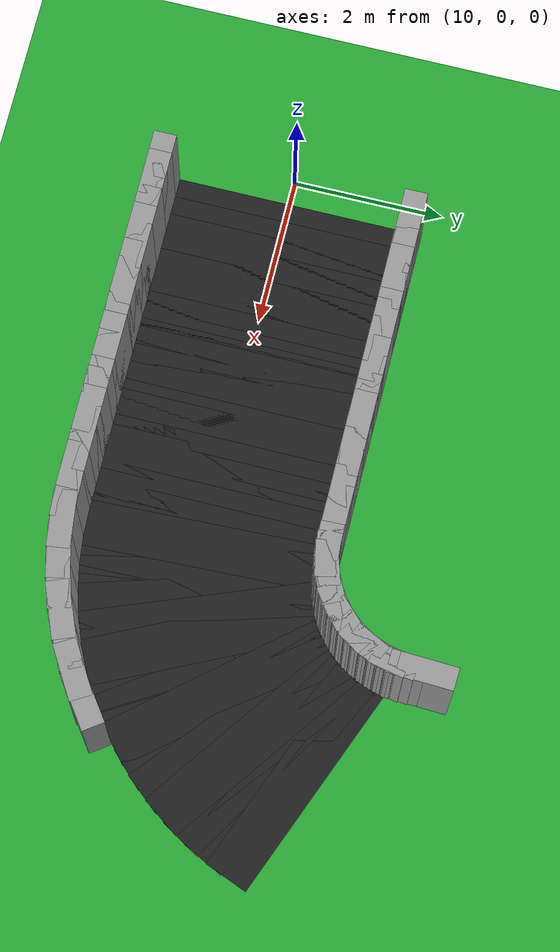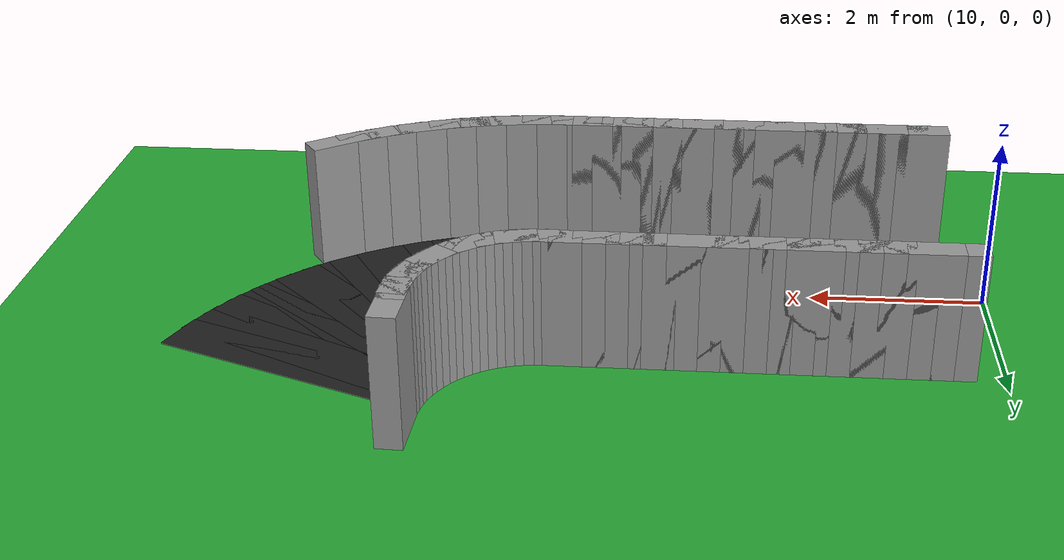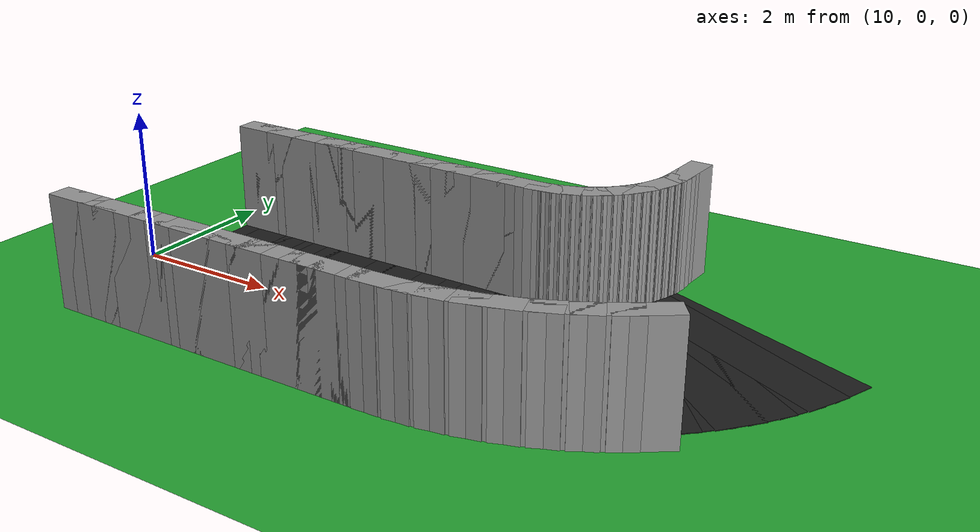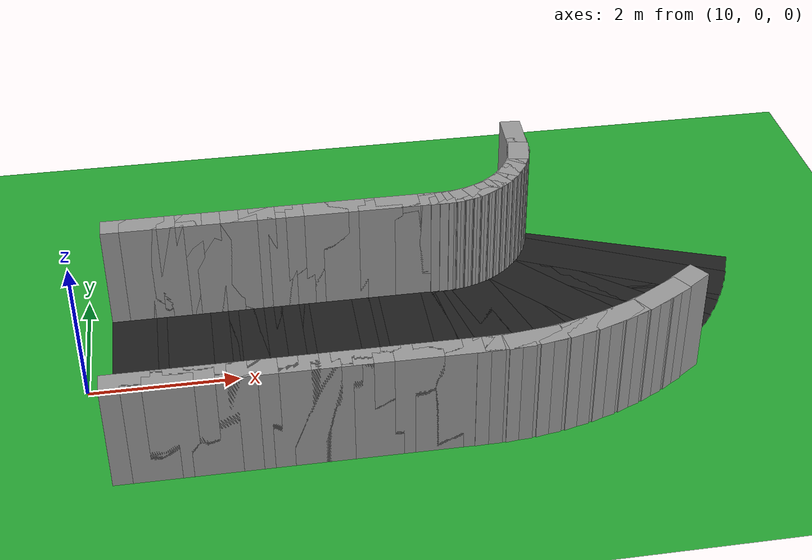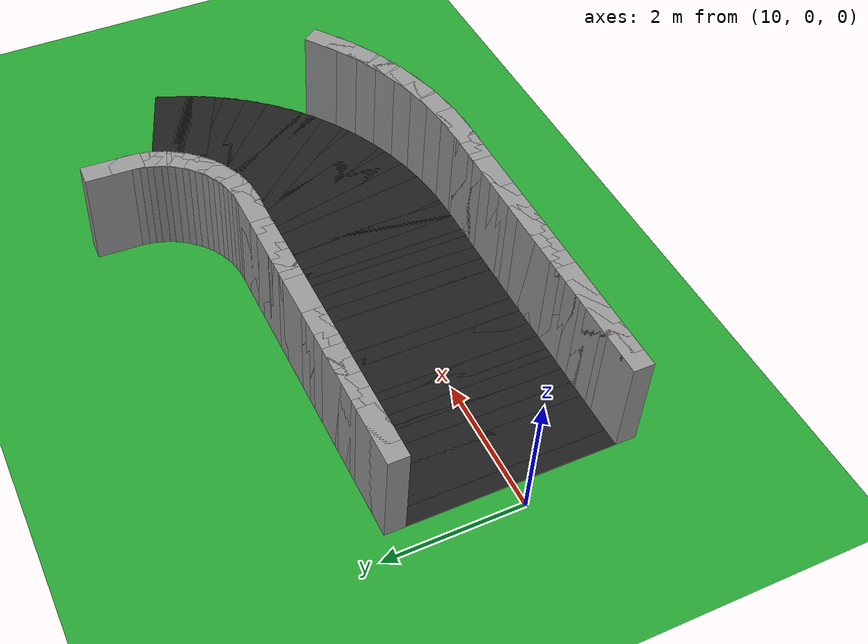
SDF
<sdf version="1.6">
 <world name="loop_extreme">
  <include><uri>model://sun</uri></include>
  <model name="ground_plane">
   <static>true</static>
   <link name="link">
    <collision name="collision">
     <surface><friction><ode><mu>100</mu><mu2>50</mu2></ode></friction></surface>
     <geometry><plane><normal>0 0 1</normal><size>120 120</size></plane></geometry>
    </collision>
    <visual name="visual">
     <geometry><plane><normal>0 0 1</normal><size>120 120</size></plane></geometry>
     <material>
      <script><uri>file://media/materials/scripts/gazebo.material</uri><name>Gazebo/Green</name></script>
     </material>
    </visual>
   </link>
  </model>
  <model name="asphalt_42">
   <static>true</static>
   <pose>10.625 0.000 0.005 0 0 0.00000</pose>
   <link name="link">
    <visual name="visual">
     <geometry><box><size>0.610 3.000 0.010</size></box></geometry>
     <material>
      <script><uri>file://media/materials/scripts/gazebo.material</uri><name>Gazebo/Black</name></script>
     </material>
    </visual>
   </link>
  </model>
  <model name="curbL_42">
   <static>true</static>
   <pose>10.625 1.650 0.750 0 0 0.00000</pose>
   <link name="link">
    <collision name="collision"><geometry><box><size>0.610 0.300 1.500</size></box></geometry></collision>
    <visual name="visual">
     <geometry><box><size>0.610 0.300 1.500</size></box></geometry>
     <material>
      <script><uri>file://media/materials/scripts/gazebo.material</uri><name>Gazebo/Grey</name></script>
     </material>
    </visual>
   </link>
  </model>
  <model name="curbR_42">
   <static>true</static>
   <pose>10.625 -1.650 0.750 0 0 0.00000</pose>
   <link name="link">
    <collision name="collision"><geometry><box><size>0.610 0.300 1.500</size></box></geometry></collision>
    <visual name="visual">
     <geometry><box><size>0.610 0.300 1.500</size></box></geometry>
     <material>
      <script><uri>file://media/materials/scripts/gazebo.material</uri><name>Gazebo/Grey</name></script>
     </material>
    </visual>
   </link>
  </model>
  <model name="asphalt_43">
   <static>true</static>
   <pose>10.875 0.000 0.005 0 0 0.00000</pose>
   <link name="link">
    <visual name="visual">
     <geometry><box><size>0.610 3.000 0.010</size></box></geometry>
     <material>
      <script><uri>file://media/materials/scripts/gazebo.material</uri><name>Gazebo/Black</name></script>
     </material>
    </visual>
   </link>
  </model>
  <model name="curbL_43">
   <static>true</static>
   <pose>10.875 1.650 0.750 0 0 0.00000</pose>
   <link name="link">
    <collision name="collision"><geometry><box><size>0.610 0.300 1.500</size></box></geometry></collision>
    <visual name="visual">
     <geometry><box><size>0.610 0.300 1.500</size></box></geometry>
     <material>
      <script><uri>file://media/materials/scripts/gazebo.material</uri><name>Gazebo/Grey</name></script>
     </material>
    </visual>
   </link>
  </model>
  <model name="curbR_43">
   <static>true</static>
   <pose>10.875 -1.650 0.750 0 0 0.00000</pose>
   <link name="link">
    <collision name="collision"><geometry><box><size>0.610 0.300 1.500</size></box></geometry></collision>
    <visual name="visual">
     <geometry><box><size>0.610 0.300 1.500</size></box></geometry>
     <material>
      <script><uri>file://media/materials/scripts/gazebo.material</uri><name>Gazebo/Grey</name></script>
     </material>
    </visual>
   </link>
  </model>
  <model name="asphalt_44">
   <static>true</static>
   <pose>11.125 0.000 0.005 0 0 0.00000</pose>
   <link name="link">
    <visual name="visual">
     <geometry><box><size>0.610 3.000 0.010</size></box></geometry>
     <material>
      <script><uri>file://media/materials/scripts/gazebo.material</uri><name>Gazebo/Black</name></script>
     </material>
    </visual>
   </link>
  </model>
  <model name="curbL_44">
   <static>true</static>
   <pose>11.125 1.650 0.750 0 0 0.00000</pose>
   <link name="link">
    <collision name="collision"><geometry><box><size>0.610 0.300 1.500</size></box></geometry></collision>
    <visual name="visual">
     <geometry><box><size>0.610 0.300 1.500</size></box></geometry>
     <material>
      <script><uri>file://media/materials/scripts/gazebo.material</uri><name>Gazebo/Grey</name></script>
     </material>
    </visual>
   </link>
  </model>
  <model name="curbR_44">
   <static>true</static>
   <pose>11.125 -1.650 0.750 0 0 0.00000</pose>
   <link name="link">
    <collision name="collision"><geometry><box><size>0.610 0.300 1.500</size></box></geometry></collision>
    <visual name="visual">
     <geometry><box><size>0.610 0.300 1.500</size></box></geometry>
     <material>
      <script><uri>file://media/materials/scripts/gazebo.material</uri><name>Gazebo/Grey</name></script>
     </material>
    </visual>
   </link>
  </model>
  <model name="asphalt_45">
   <static>true</static>
   <pose>11.375 0.000 0.005 0 0 0.00000</pose>
   <link name="link">
    <visual name="visual">
     <geometry><box><size>0.610 3.000 0.010</size></box></geometry>
     <material>
      <script><uri>file://media/materials/scripts/gazebo.material</uri><name>Gazebo/Black</name></script>
     </material>
    </visual>
   </link>
  </model>
  <model name="curbL_45">
   <static>true</static>
   <pose>11.375 1.650 0.750 0 0 0.00000</pose>
   <link name="link">
    <collision name="collision"><geometry><box><size>0.610 0.300 1.500</size></box></geometry></collision>
    <visual name="visual">
     <geometry><box><size>0.610 0.300 1.500</size></box></geometry>
     <material>
      <script><uri>file://media/materials/scripts/gazebo.material</uri><name>Gazebo/Grey</name></script>
     </material>
    </visual>
   </link>
  </model>
  <model name="curbR_45">
   <static>true</static>
   <pose>11.375 -1.650 0.750 0 0 0.00000</pose>
   <link name="link">
    <collision name="collision"><geometry><box><size>0.610 0.300 1.500</size></box></geometry></collision>
    <visual name="visual">
     <geometry><box><size>0.610 0.300 1.500</size></box></geometry>
     <material>
      <script><uri>file://media/materials/scripts/gazebo.material</uri><name>Gazebo/Grey</name></script>
     </material>
    </visual>
   </link>
  </model>
  <model name="asphalt_46">
   <static>true</static>
   <pose>11.625 0.000 0.005 0 0 0.00000</pose>
   <link name="link">
    <visual name="visual">
     <geometry><box><size>0.610 3.000 0.010</size></box></geometry>
     <material>
      <script><uri>file://media/materials/scripts/gazebo.material</uri><name>Gazebo/Black</name></script>
     </material>
    </visual>
   </link>
  </model>
  <model name="curbL_46">
   <static>true</static>
   <pose>11.625 1.650 0.750 0 0 0.00000</pose>
   <link name="link">
    <collision name="collision"><geometry><box><size>0.610 0.300 1.500</size></box></geometry></collision>
    <visual name="visual">
     <geometry><box><size>0.610 0.300 1.500</size></box></geometry>
     <material>
      <script><uri>file://media/materials/scripts/gazebo.material</uri><name>Gazebo/Grey</name></script>
     </material>
    </visual>
   </link>
  </model>
  <model name="curbR_46">
   <static>true</static>
   <pose>11.625 -1.650 0.750 0 0 0.00000</pose>
   <link name="link">
    <collision name="collision"><geometry><box><size>0.610 0.300 1.500</size></box></geometry></collision>
    <visual name="visual">
     <geometry><box><size>0.610 0.300 1.500</size></box></geometry>
     <material>
      <script><uri>file://media/materials/scripts/gazebo.material</uri><name>Gazebo/Grey</name></script>
     </material>
    </visual>
   </link>
  </model>
  <model name="asphalt_47">
   <static>true</static>
   <pose>11.875 0.000 0.005 0 0 0.00000</pose>
   <link name="link">
    <visual name="visual">
     <geometry><box><size>0.610 3.000 0.010</size></box></geometry>
     <material>
      <script><uri>file://media/materials/scripts/gazebo.material</uri><name>Gazebo/Black</name></script>
     </material>
    </visual>
   </link>
  </model>
  <model name="curbL_47">
   <static>true</static>
   <pose>11.875 1.650 0.750 0 0 0.00000</pose>
   <link name="link">
    <collision name="collision"><geometry><box><size>0.610 0.300 1.500</size></box></geometry></collision>
    <visual name="visual">
     <geometry><box><size>0.610 0.300 1.500</size></box></geometry>
     <material>
      <script><uri>file://media/materials/scripts/gazebo.material</uri><name>Gazebo/Grey</name></script>
     </material>
    </visual>
   </link>
  </model>
  <model name="curbR_47">
   <static>true</static>
   <pose>11.875 -1.650 0.750 0 0 0.00000</pose>
   <link name="link">
    <collision name="collision"><geometry><box><size>0.610 0.300 1.500</size></box></geometry></collision>
    <visual name="visual">
     <geometry><box><size>0.610 0.300 1.500</size></box></geometry>
     <material>
      <script><uri>file://media/materials/scripts/gazebo.material</uri><name>Gazebo/Grey</name></script>
     </material>
    </visual>
   </link>
  </model>
  <model name="asphalt_48">
   <static>true</static>
   <pose>12.125 0.000 0.005 0 0 0.00000</pose>
   <link name="link">
    <visual name="visual">
     <geometry><box><size>0.610 3.000 0.010</size></box></geometry>
     <material>
      <script><uri>file://media/materials/scripts/gazebo.material</uri><name>Gazebo/Black</name></script>
     </material>
    </visual>
   </link>
  </model>
  <model name="curbL_48">
   <static>true</static>
   <pose>12.125 1.650 0.750 0 0 0.00000</pose>
   <link name="link">
    <collision name="collision"><geometry><box><size>0.610 0.300 1.500</size></box></geometry></collision>
    <visual name="visual">
     <geometry><box><size>0.610 0.300 1.500</size></box></geometry>
     <material>
      <script><uri>file://media/materials/scripts/gazebo.material</uri><name>Gazebo/Grey</name></script>
     </material>
    </visual>
   </link>
  </model>
  <model name="curbR_48">
   <static>true</static>
   <pose>12.125 -1.650 0.750 0 0 0.00000</pose>
   <link name="link">
    <collision name="collision"><geometry><box><size>0.610 0.300 1.500</size></box></geometry></collision>
    <visual name="visual">
     <geometry><box><size>0.610 0.300 1.500</size></box></geometry>
     <material>
      <script><uri>file://media/materials/scripts/gazebo.material</uri><name>Gazebo/Grey</name></script>
     </material>
    </visual>
   </link>
  </model>
  <model name="asphalt_49">
   <static>true</static>
   <pose>12.375 0.000 0.005 0 0 0.00000</pose>
   <link name="link">
    <visual name="visual">
     <geometry><box><size>0.610 3.000 0.010</size></box></geometry>
     <material>
      <script><uri>file://media/materials/scripts/gazebo.material</uri><name>Gazebo/Black</name></script>
     </material>
    </visual>
   </link>
  </model>
  <model name="curbL_49">
   <static>true</static>
   <pose>12.375 1.650 0.750 0 0 0.00000</pose>
   <link name="link">
    <collision name="collision"><geometry><box><size>0.610 0.300 1.500</size></box></geometry></collision>
    <visual name="visual">
     <geometry><box><size>0.610 0.300 1.500</size></box></geometry>
     <material>
      <script><uri>file://media/materials/scripts/gazebo.material</uri><name>Gazebo/Grey</name></script>
     </material>
    </visual>
   </link>
  </model>
  <model name="curbR_49">
   <static>true</static>
   <pose>12.375 -1.650 0.750 0 0 0.00000</pose>
   <link name="link">
    <collision name="collision"><geometry><box><size>0.610 0.300 1.500</size></box></geometry></collision>
    <visual name="visual">
     <geometry><box><size>0.610 0.300 1.500</size></box></geometry>
     <material>
      <script><uri>file://media/materials/scripts/gazebo.material</uri><name>Gazebo/Grey</name></script>
     </material>
    </visual>
   </link>
  </model>
  <model name="asphalt_50">
   <static>true</static>
   <pose>12.625 0.000 0.005 0 0 0.00000</pose>
   <link name="link">
    <visual name="visual">
     <geometry><box><size>0.610 3.000 0.010</size></box></geometry>
     <material>
      <script><uri>file://media/materials/scripts/gazebo.material</uri><name>Gazebo/Black</name></script>
     </material>
    </visual>
   </link>
  </model>
  <model name="curbL_50">
   <static>true</static>
   <pose>12.625 1.650 0.750 0 0 0.00000</pose>
   <link name="link">
    <collision name="collision"><geometry><box><size>0.610 0.300 1.500</size></box></geometry></collision>
    <visual name="visual">
     <geometry><box><size>0.610 0.300 1.500</size></box></geometry>
     <material>
      <script><uri>file://media/materials/scripts/gazebo.material</uri><name>Gazebo/Grey</name></script>
     </material>
    </visual>
   </link>
  </model>
  <model name="curbR_50">
   <static>true</static>
   <pose>12.625 -1.650 0.750 0 0 0.00000</pose>
   <link name="link">
    <collision name="collision"><geometry><box><size>0.610 0.300 1.500</size></box></geometry></collision>
    <visual name="visual">
     <geometry><box><size>0.610 0.300 1.500</size></box></geometry>
     <material>
      <script><uri>file://media/materials/scripts/gazebo.material</uri><name>Gazebo/Grey</name></script>
     </material>
    </visual>
   </link>
  </model>
  <model name="asphalt_51">
   <static>true</static>
   <pose>12.875 0.000 0.005 0 0 0.00000</pose>
   <link name="link">
    <visual name="visual">
     <geometry><box><size>0.610 3.000 0.010</size></box></geometry>
     <material>
      <script><uri>file://media/materials/scripts/gazebo.material</uri><name>Gazebo/Black</name></script>
     </material>
    </visual>
   </link>
  </model>
  <model name="curbL_51">
   <static>true</static>
   <pose>12.875 1.650 0.750 0 0 0.00000</pose>
   <link name="link">
    <collision name="collision"><geometry><box><size>0.610 0.300 1.500</size></box></geometry></collision>
    <visual name="visual">
     <geometry><box><size>0.610 0.300 1.500</size></box></geometry>
     <material>
      <script><uri>file://media/materials/scripts/gazebo.material</uri><name>Gazebo/Grey</name></script>
     </material>
    </visual>
   </link>
  </model>
  <model name="curbR_51">
   <static>true</static>
   <pose>12.875 -1.650 0.750 0 0 0.00000</pose>
   <link name="link">
    <collision name="collision"><geometry><box><size>0.610 0.300 1.500</size></box></geometry></collision>
    <visual name="visual">
     <geometry><box><size>0.610 0.300 1.500</size></box></geometry>
     <material>
      <script><uri>file://media/materials/scripts/gazebo.material</uri><name>Gazebo/Grey</name></script>
     </material>
    </visual>
   </link>
  </model>
  <model name="asphalt_52">
   <static>true</static>
   <pose>13.125 0.000 0.005 0 0 0.00000</pose>
   <link name="link">
    <visual name="visual">
     <geometry><box><size>0.610 3.000 0.010</size></box></geometry>
     <material>
      <script><uri>file://media/materials/scripts/gazebo.material</uri><name>Gazebo/Black</name></script>
     </material>
    </visual>
   </link>
  </model>
  <model name="curbL_52">
   <static>true</static>
   <pose>13.125 1.650 0.750 0 0 0.00000</pose>
   <link name="link">
    <collision name="collision"><geometry><box><size>0.610 0.300 1.500</size></box></geometry></collision>
    <visual name="visual">
     <geometry><box><size>0.610 0.300 1.500</size></box></geometry>
     <material>
      <script><uri>file://media/materials/scripts/gazebo.material</uri><name>Gazebo/Grey</name></script>
     </material>
    </visual>
   </link>
  </model>
  <model name="curbR_52">
   <static>true</static>
   <pose>13.125 -1.650 0.750 0 0 0.00000</pose>
   <link name="link">
    <collision name="collision"><geometry><box><size>0.610 0.300 1.500</size></box></geometry></collision>
    <visual name="visual">
     <geometry><box><size>0.610 0.300 1.500</size></box></geometry>
     <material>
      <script><uri>file://media/materials/scripts/gazebo.material</uri><name>Gazebo/Grey</name></script>
     </material>
    </visual>
   </link>
  </model>
  <model name="asphalt_53">
   <static>true</static>
   <pose>13.375 0.000 0.005 0 0 0.00000</pose>
   <link name="link">
    <visual name="visual">
     <geometry><box><size>0.610 3.000 0.010</size></box></geometry>
     <material>
      <script><uri>file://media/materials/scripts/gazebo.material</uri><name>Gazebo/Black</name></script>
     </material>
    </visual>
   </link>
  </model>
  <model name="curbL_53">
   <static>true</static>
   <pose>13.375 1.650 0.750 0 0 0.00000</pose>
   <link name="link">
    <collision name="collision"><geometry><box><size>0.610 0.300 1.500</size></box></geometry></collision>
    <visual name="visual">
     <geometry><box><size>0.610 0.300 1.500</size></box></geometry>
     <material>
      <script><uri>file://media/materials/scripts/gazebo.material</uri><name>Gazebo/Grey</name></script>
     </material>
    </visual>
   </link>
  </model>
  <model name="curbR_53">
   <static>true</static>
   <pose>13.375 -1.650 0.750 0 0 0.00000</pose>
   <link name="link">
    <collision name="collision"><geometry><box><size>0.610 0.300 1.500</size></box></geometry></collision>
    <visual name="visual">
     <geometry><box><size>0.610 0.300 1.500</size></box></geometry>
     <material>
      <script><uri>file://media/materials/scripts/gazebo.material</uri><name>Gazebo/Grey</name></script>
     </material>
    </visual>
   </link>
  </model>
  <model name="asphalt_54">
   <static>true</static>
   <pose>13.625 0.000 0.005 0 0 0.00000</pose>
   <link name="link">
    <visual name="visual">
     <geometry><box><size>0.610 3.000 0.010</size></box></geometry>
     <material>
      <script><uri>file://media/materials/scripts/gazebo.material</uri><name>Gazebo/Black</name></script>
     </material>
    </visual>
   </link>
  </model>
  <model name="curbL_54">
   <static>true</static>
   <pose>13.625 1.650 0.750 0 0 0.00000</pose>
   <link name="link">
    <collision name="collision"><geometry><box><size>0.610 0.300 1.500</size></box></geometry></collision>
    <visual name="visual">
     <geometry><box><size>0.610 0.300 1.500</size></box></geometry>
     <material>
      <script><uri>file://media/materials/scripts/gazebo.material</uri><name>Gazebo/Grey</name></script>
     </material>
    </visual>
   </link>
  </model>
  <model name="curbR_54">
   <static>true</static>
   <pose>13.625 -1.650 0.750 0 0 0.00000</pose>
   <link name="link">
    <collision name="collision"><geometry><box><size>0.610 0.300 1.500</size></box></geometry></collision>
    <visual name="visual">
     <geometry><box><size>0.610 0.300 1.500</size></box></geometry>
     <material>
      <script><uri>file://media/materials/scripts/gazebo.material</uri><name>Gazebo/Grey</name></script>
     </material>
    </visual>
   </link>
  </model>
  <model name="asphalt_55">
   <static>true</static>
   <pose>13.875 0.000 0.005 0 0 0.00000</pose>
   <link name="link">
    <visual name="visual">
     <geometry><box><size>0.610 3.000 0.010</size></box></geometry>
     <material>
      <script><uri>file://media/materials/scripts/gazebo.material</uri><name>Gazebo/Black</name></script>
     </material>
    </visual>
   </link>
  </model>
  <model name="curbL_55">
   <static>true</static>
   <pose>13.875 1.650 0.750 0 0 0.00000</pose>
   <link name="link">
    <collision name="collision"><geometry><box><size>0.610 0.300 1.500</size></box></geometry></collision>
    <visual name="visual">
     <geometry><box><size>0.610 0.300 1.500</size></box></geometry>
     <material>
      <script><uri>file://media/materials/scripts/gazebo.material</uri><name>Gazebo/Grey</name></script>
     </material>
    </visual>
   </link>
  </model>
  <model name="curbR_55">
   <static>true</static>
   <pose>13.875 -1.650 0.750 0 0 0.00000</pose>
   <link name="link">
    <collision name="collision"><geometry><box><size>0.610 0.300 1.500</size></box></geometry></collision>
    <visual name="visual">
     <geometry><box><size>0.610 0.300 1.500</size></box></geometry>
     <material>
      <script><uri>file://media/materials/scripts/gazebo.material</uri><name>Gazebo/Grey</name></script>
     </material>
    </visual>
   </link>
  </model>
  <model name="asphalt_56">
   <static>true</static>
   <pose>14.125 0.000 0.005 0 0 0.00000</pose>
   <link name="link">
    <visual name="visual">
     <geometry><box><size>0.610 3.000 0.010</size></box></geometry>
     <material>
      <script><uri>file://media/materials/scripts/gazebo.material</uri><name>Gazebo/Black</name></script>
     </material>
    </visual>
   </link>
  </model>
  <model name="curbL_56">
   <static>true</static>
   <pose>14.125 1.650 0.750 0 0 0.00000</pose>
   <link name="link">
    <collision name="collision"><geometry><box><size>0.610 0.300 1.500</size></box></geometry></collision>
    <visual name="visual">
     <geometry><box><size>0.610 0.300 1.500</size></box></geometry>
     <material>
      <script><uri>file://media/materials/scripts/gazebo.material</uri><name>Gazebo/Grey</name></script>
     </material>
    </visual>
   </link>
  </model>
  <model name="curbR_56">
   <static>true</static>
   <pose>14.125 -1.650 0.750 0 0 0.00000</pose>
   <link name="link">
    <collision name="collision"><geometry><box><size>0.610 0.300 1.500</size></box></geometry></collision>
    <visual name="visual">
     <geometry><box><size>0.610 0.300 1.500</size></box></geometry>
     <material>
      <script><uri>file://media/materials/scripts/gazebo.material</uri><name>Gazebo/Grey</name></script>
     </material>
    </visual>
   </link>
  </model>
  <model name="asphalt_57">
   <static>true</static>
   <pose>14.375 0.000 0.005 0 0 0.00000</pose>
   <link name="link">
    <visual name="visual">
     <geometry><box><size>0.610 3.000 0.010</size></box></geometry>
     <material>
      <script><uri>file://media/materials/scripts/gazebo.material</uri><name>Gazebo/Black</name></script>
     </material>
    </visual>
   </link>
  </model>
  <model name="curbL_57">
   <static>true</static>
   <pose>14.375 1.650 0.750 0 0 0.00000</pose>
   <link name="link">
    <collision name="collision"><geometry><box><size>0.610 0.300 1.500</size></box></geometry></collision>
    <visual name="visual">
     <geometry><box><size>0.610 0.300 1.500</size></box></geometry>
     <material>
      <script><uri>file://media/materials/scripts/gazebo.material</uri><name>Gazebo/Grey</name></script>
     </material>
    </visual>
   </link>
  </model>
  <model name="curbR_57">
   <static>true</static>
   <pose>14.375 -1.650 0.750 0 0 0.00000</pose>
   <link name="link">
    <collision name="collision"><geometry><box><size>0.610 0.300 1.500</size></box></geometry></collision>
    <visual name="visual">
     <geometry><box><size>0.610 0.300 1.500</size></box></geometry>
     <material>
      <script><uri>file://media/materials/scripts/gazebo.material</uri><name>Gazebo/Grey</name></script>
     </material>
    </visual>
   </link>
  </model>
  <model name="asphalt_58">
   <static>true</static>
   <pose>14.625 0.000 0.005 0 0 0.00000</pose>
   <link name="link">
    <visual name="visual">
     <geometry><box><size>0.610 3.000 0.010</size></box></geometry>
     <material>
      <script><uri>file://media/materials/scripts/gazebo.material</uri><name>Gazebo/Black</name></script>
     </material>
    </visual>
   </link>
  </model>
  <model name="curbL_58">
   <static>true</static>
   <pose>14.625 1.650 0.750 0 0 0.00000</pose>
   <link name="link">
    <collision name="collision"><geometry><box><size>0.610 0.300 1.500</size></box></geometry></collision>
    <visual name="visual">
     <geometry><box><size>0.610 0.300 1.500</size></box></geometry>
     <material>
      <script><uri>file://media/materials/scripts/gazebo.material</uri><name>Gazebo/Grey</name></script>
     </material>
    </visual>
   </link>
  </model>
  <model name="curbR_58">
   <static>true</static>
   <pose>14.625 -1.650 0.750 0 0 0.00000</pose>
   <link name="link">
    <collision name="collision"><geometry><box><size>0.610 0.300 1.500</size></box></geometry></collision>
    <visual name="visual">
     <geometry><box><size>0.610 0.300 1.500</size></box></geometry>
     <material>
      <script><uri>file://media/materials/scripts/gazebo.material</uri><name>Gazebo/Grey</name></script>
     </material>
    </visual>
   </link>
  </model>
  <model name="asphalt_59">
   <static>true</static>
   <pose>14.875 0.000 0.005 0 0 0.00000</pose>
   <link name="link">
    <visual name="visual">
     <geometry><box><size>0.610 3.000 0.010</size></box></geometry>
     <material>
      <script><uri>file://media/materials/scripts/gazebo.material</uri><name>Gazebo/Black</name></script>
     </material>
    </visual>
   </link>
  </model>
  <model name="curbL_59">
   <static>true</static>
   <pose>14.875 1.650 0.750 0 0 0.00000</pose>
   <link name="link">
    <collision name="collision"><geometry><box><size>0.610 0.300 1.500</size></box></geometry></collision>
    <visual name="visual">
     <geometry><box><size>0.610 0.300 1.500</size></box></geometry>
     <material>
      <script><uri>file://media/materials/scripts/gazebo.material</uri><name>Gazebo/Grey</name></script>
     </material>
    </visual>
   </link>
  </model>
  <model name="curbR_59">
   <static>true</static>
   <pose>14.875 -1.650 0.750 0 0 0.00000</pose>
   <link name="link">
    <collision name="collision"><geometry><box><size>0.610 0.300 1.500</size></box></geometry></collision>
    <visual name="visual">
     <geometry><box><size>0.610 0.300 1.500</size></box></geometry>
     <material>
      <script><uri>file://media/materials/scripts/gazebo.material</uri><name>Gazebo/Grey</name></script>
     </material>
    </visual>
   </link>
  </model>
  <model name="asphalt_60">
   <static>true</static>
   <pose>15.124 0.005 0.005 0 0 0.04134</pose>
   <link name="link">
    <visual name="visual">
     <geometry><box><size>0.608 3.000 0.010</size></box></geometry>
     <material>
      <script><uri>file://media/materials/scripts/gazebo.material</uri><name>Gazebo/Black</name></script>
     </material>
    </visual>
   </link>
  </model>
  <model name="curbL_60">
   <static>true</static>
   <pose>15.056 1.652 0.750 0 0 0.04134</pose>
   <link name="link">
    <collision name="collision"><geometry><box><size>0.472 0.300 1.500</size></box></geometry></collision>
    <visual name="visual">
     <geometry><box><size>0.472 0.300 1.500</size></box></geometry>
     <material>
      <script><uri>file://media/materials/scripts/gazebo.material</uri><name>Gazebo/Grey</name></script>
     </material>
    </visual>
   </link>
  </model>
  <model name="curbR_60">
   <static>true</static>
   <pose>15.192 -1.642 0.750 0 0 0.04134</pose>
   <link name="link">
    <collision name="collision"><geometry><box><size>0.744 0.300 1.500</size></box></geometry></collision>
    <visual name="visual">
     <geometry><box><size>0.744 0.300 1.500</size></box></geometry>
     <material>
      <script><uri>file://media/materials/scripts/gazebo.material</uri><name>Gazebo/Grey</name></script>
     </material>
    </visual>
   </link>
  </model>
  <model name="asphalt_61">
   <static>true</static>
   <pose>15.371 0.026 0.005 0 0 0.12401</pose>
   <link name="link">
    <visual name="visual">
     <geometry><box><size>0.608 3.000 0.010</size></box></geometry>
     <material>
      <script><uri>file://media/materials/scripts/gazebo.material</uri><name>Gazebo/Black</name></script>
     </material>
    </visual>
   </link>
  </model>
  <model name="curbL_61">
   <static>true</static>
   <pose>15.167 1.662 0.750 0 0 0.12401</pose>
   <link name="link">
    <collision name="collision"><geometry><box><size>0.472 0.300 1.500</size></box></geometry></collision>
    <visual name="visual">
     <geometry><box><size>0.472 0.300 1.500</size></box></geometry>
     <material>
      <script><uri>file://media/materials/scripts/gazebo.material</uri><name>Gazebo/Grey</name></script>
     </material>
    </visual>
   </link>
  </model>
  <model name="curbR_61">
   <static>true</static>
   <pose>15.575 -1.610 0.750 0 0 0.12401</pose>
   <link name="link">
    <collision name="collision"><geometry><box><size>0.744 0.300 1.500</size></box></geometry></collision>
    <visual name="visual">
     <geometry><box><size>0.744 0.300 1.500</size></box></geometry>
     <material>
      <script><uri>file://media/materials/scripts/gazebo.material</uri><name>Gazebo/Grey</name></script>
     </material>
    </visual>
   </link>
  </model>
  <model name="asphalt_62">
   <static>true</static>
   <pose>15.615 0.066 0.005 0 0 0.20668</pose>
   <link name="link">
    <visual name="visual">
     <geometry><box><size>0.608 3.000 0.010</size></box></geometry>
     <material>
      <script><uri>file://media/materials/scripts/gazebo.material</uri><name>Gazebo/Black</name></script>
     </material>
    </visual>
   </link>
  </model>
  <model name="curbL_62">
   <static>true</static>
   <pose>15.277 1.680 0.750 0 0 0.20668</pose>
   <link name="link">
    <collision name="collision"><geometry><box><size>0.472 0.300 1.500</size></box></geometry></collision>
    <visual name="visual">
     <geometry><box><size>0.472 0.300 1.500</size></box></geometry>
     <material>
      <script><uri>file://media/materials/scripts/gazebo.material</uri><name>Gazebo/Grey</name></script>
     </material>
    </visual>
   </link>
  </model>
  <model name="curbR_62">
   <static>true</static>
   <pose>15.954 -1.547 0.750 0 0 0.20668</pose>
   <link name="link">
    <collision name="collision"><geometry><box><size>0.744 0.300 1.500</size></box></geometry></collision>
    <visual name="visual">
     <geometry><box><size>0.744 0.300 1.500</size></box></geometry>
     <material>
      <script><uri>file://media/materials/scripts/gazebo.material</uri><name>Gazebo/Grey</name></script>
     </material>
    </visual>
   </link>
  </model>
  <model name="asphalt_63">
   <static>true</static>
   <pose>15.856 0.127 0.005 0 0 0.28936</pose>
   <link name="link">
    <visual name="visual">
     <geometry><box><size>0.608 3.000 0.010</size></box></geometry>
     <material>
      <script><uri>file://media/materials/scripts/gazebo.material</uri><name>Gazebo/Black</name></script>
     </material>
    </visual>
   </link>
  </model>
  <model name="curbL_63">
   <static>true</static>
   <pose>15.385 1.707 0.750 0 0 0.28936</pose>
   <link name="link">
    <collision name="collision"><geometry><box><size>0.472 0.300 1.500</size></box></geometry></collision>
    <visual name="visual">
     <geometry><box><size>0.472 0.300 1.500</size></box></geometry>
     <material>
      <script><uri>file://media/materials/scripts/gazebo.material</uri><name>Gazebo/Grey</name></script>
     </material>
    </visual>
   </link>
  </model>
  <model name="curbR_63">
   <static>true</static>
   <pose>16.326 -1.453 0.750 0 0 0.28936</pose>
   <link name="link">
    <collision name="collision"><geometry><box><size>0.744 0.300 1.500</size></box></geometry></collision>
    <visual name="visual">
     <geometry><box><size>0.744 0.300 1.500</size></box></geometry>
     <material>
      <script><uri>file://media/materials/scripts/gazebo.material</uri><name>Gazebo/Grey</name></script>
     </material>
    </visual>
   </link>
  </model>
  <model name="asphalt_64">
   <static>true</static>
   <pose>16.090 0.208 0.005 0 0 0.37203</pose>
   <link name="link">
    <visual name="visual">
     <geometry><box><size>0.608 3.000 0.010</size></box></geometry>
     <material>
      <script><uri>file://media/materials/scripts/gazebo.material</uri><name>Gazebo/Black</name></script>
     </material>
    </visual>
   </link>
  </model>
  <model name="curbL_64">
   <static>true</static>
   <pose>15.491 1.743 0.750 0 0 0.37203</pose>
   <link name="link">
    <collision name="collision"><geometry><box><size>0.472 0.300 1.500</size></box></geometry></collision>
    <visual name="visual">
     <geometry><box><size>0.472 0.300 1.500</size></box></geometry>
     <material>
      <script><uri>file://media/materials/scripts/gazebo.material</uri><name>Gazebo/Grey</name></script>
     </material>
    </visual>
   </link>
  </model>
  <model name="curbR_64">
   <static>true</static>
   <pose>16.689 -1.328 0.750 0 0 0.37203</pose>
   <link name="link">
    <collision name="collision"><geometry><box><size>0.744 0.300 1.500</size></box></geometry></collision>
    <visual name="visual">
     <geometry><box><size>0.744 0.300 1.500</size></box></geometry>
     <material>
      <script><uri>file://media/materials/scripts/gazebo.material</uri><name>Gazebo/Grey</name></script>
     </material>
    </visual>
   </link>
  </model>
  <model name="asphalt_65">
   <static>true</static>
   <pose>16.317 0.307 0.005 0 0 0.45470</pose>
   <link name="link">
    <visual name="visual">
     <geometry><box><size>0.608 3.000 0.010</size></box></geometry>
     <material>
      <script><uri>file://media/materials/scripts/gazebo.material</uri><name>Gazebo/Black</name></script>
     </material>
    </visual>
   </link>
  </model>
  <model name="curbL_65">
   <static>true</static>
   <pose>15.593 1.788 0.750 0 0 0.45470</pose>
   <link name="link">
    <collision name="collision"><geometry><box><size>0.472 0.300 1.500</size></box></geometry></collision>
    <visual name="visual">
     <geometry><box><size>0.472 0.300 1.500</size></box></geometry>
     <material>
      <script><uri>file://media/materials/scripts/gazebo.material</uri><name>Gazebo/Grey</name></script>
     </material>
    </visual>
   </link>
  </model>
  <model name="curbR_65">
   <static>true</static>
   <pose>17.041 -1.174 0.750 0 0 0.45470</pose>
   <link name="link">
    <collision name="collision"><geometry><box><size>0.744 0.300 1.500</size></box></geometry></collision>
    <visual name="visual">
     <geometry><box><size>0.744 0.300 1.500</size></box></geometry>
     <material>
      <script><uri>file://media/materials/scripts/gazebo.material</uri><name>Gazebo/Grey</name></script>
     </material>
    </visual>
   </link>
  </model>
  <model name="asphalt_66">
   <static>true</static>
   <pose>16.535 0.425 0.005 0 0 0.53738</pose>
   <link name="link">
    <visual name="visual">
     <geometry><box><size>0.608 3.000 0.010</size></box></geometry>
     <material>
      <script><uri>file://media/materials/scripts/gazebo.material</uri><name>Gazebo/Black</name></script>
     </material>
    </visual>
   </link>
  </model>
  <model name="curbL_66">
   <static>true</static>
   <pose>15.691 1.841 0.750 0 0 0.53738</pose>
   <link name="link">
    <collision name="collision"><geometry><box><size>0.472 0.300 1.500</size></box></geometry></collision>
    <visual name="visual">
     <geometry><box><size>0.472 0.300 1.500</size></box></geometry>
     <material>
      <script><uri>file://media/materials/scripts/gazebo.material</uri><name>Gazebo/Grey</name></script>
     </material>
    </visual>
   </link>
  </model>
  <model name="curbR_66">
   <static>true</static>
   <pose>17.379 -0.991 0.750 0 0 0.53738</pose>
   <link name="link">
    <collision name="collision"><geometry><box><size>0.744 0.300 1.500</size></box></geometry></collision>
    <visual name="visual">
     <geometry><box><size>0.744 0.300 1.500</size></box></geometry>
     <material>
      <script><uri>file://media/materials/scripts/gazebo.material</uri><name>Gazebo/Grey</name></script>
     </material>
    </visual>
   </link>
  </model>
  <model name="asphalt_67">
   <static>true</static>
   <pose>16.742 0.561 0.005 0 0 0.62005</pose>
   <link name="link">
    <visual name="visual">
     <geometry><box><size>0.608 3.000 0.010</size></box></geometry>
     <material>
      <script><uri>file://media/materials/scripts/gazebo.material</uri><name>Gazebo/Black</name></script>
     </material>
    </visual>
   </link>
  </model>
  <model name="curbL_67">
   <static>true</static>
   <pose>15.784 1.902 0.750 0 0 0.62005</pose>
   <link name="link">
    <collision name="collision"><geometry><box><size>0.472 0.300 1.500</size></box></geometry></collision>
    <visual name="visual">
     <geometry><box><size>0.472 0.300 1.500</size></box></geometry>
     <material>
      <script><uri>file://media/materials/scripts/gazebo.material</uri><name>Gazebo/Grey</name></script>
     </material>
    </visual>
   </link>
  </model>
  <model name="curbR_67">
   <static>true</static>
   <pose>17.700 -0.781 0.750 0 0 0.62005</pose>
   <link name="link">
    <collision name="collision"><geometry><box><size>0.744 0.300 1.500</size></box></geometry></collision>
    <visual name="visual">
     <geometry><box><size>0.744 0.300 1.500</size></box></geometry>
     <material>
      <script><uri>file://media/materials/scripts/gazebo.material</uri><name>Gazebo/Grey</name></script>
     </material>
    </visual>
   </link>
  </model>
  <model name="asphalt_68">
   <static>true</static>
   <pose>16.938 0.713 0.005 0 0 0.70272</pose>
   <link name="link">
    <visual name="visual">
     <geometry><box><size>0.608 3.000 0.010</size></box></geometry>
     <material>
      <script><uri>file://media/materials/scripts/gazebo.material</uri><name>Gazebo/Black</name></script>
     </material>
    </visual>
   </link>
  </model>
  <model name="curbL_68">
   <static>true</static>
   <pose>15.872 1.971 0.750 0 0 0.70272</pose>
   <link name="link">
    <collision name="collision"><geometry><box><size>0.472 0.300 1.500</size></box></geometry></collision>
    <visual name="visual">
     <geometry><box><size>0.472 0.300 1.500</size></box></geometry>
     <material>
      <script><uri>file://media/materials/scripts/gazebo.material</uri><name>Gazebo/Grey</name></script>
     </material>
    </visual>
   </link>
  </model>
  <model name="asphalt_69">
   <static>true</static>
   <pose>17.120 0.881 0.005 0 0 0.78540</pose>
   <link name="link">
    <visual name="visual">
     <geometry><box><size>0.608 3.000 0.010</size></box></geometry>
     <material>
      <script><uri>file://media/materials/scripts/gazebo.material</uri><name>Gazebo/Black</name></script>
     </material>
    </visual>
   </link>
  </model>
  <model name="curbL_69">
   <static>true</static>
   <pose>15.954 2.046 0.750 0 0 0.78540</pose>
   <link name="link">
    <collision name="collision"><geometry><box><size>0.472 0.300 1.500</size></box></geometry></collision>
    <visual name="visual">
     <geometry><box><size>0.472 0.300 1.500</size></box></geometry>
     <material>
      <script><uri>file://media/materials/scripts/gazebo.material</uri><name>Gazebo/Grey</name></script>
     </material>
    </visual>
   </link>
  </model>
  <model name="asphalt_70">
   <static>true</static>
   <pose>17.288 1.063 0.005 0 0 0.86807</pose>
   <link name="link">
    <visual name="visual">
     <geometry><box><size>0.608 3.000 0.010</size></box></geometry>
     <material>
      <script><uri>file://media/materials/scripts/gazebo.material</uri><name>Gazebo/Black</name></script>
     </material>
    </visual>
   </link>
  </model>
  <model name="curbL_70">
   <static>true</static>
   <pose>16.030 2.129 0.750 0 0 0.86807</pose>
   <link name="link">
    <collision name="collision"><geometry><box><size>0.472 0.300 1.500</size></box></geometry></collision>
    <visual name="visual">
     <geometry><box><size>0.472 0.300 1.500</size></box></geometry>
     <material>
      <script><uri>file://media/materials/scripts/gazebo.material</uri><name>Gazebo/Grey</name></script>
     </material>
    </visual>
   </link>
  </model>
  <model name="asphalt_71">
   <static>true</static>
   <pose>17.440 1.259 0.005 0 0 0.95075</pose>
   <link name="link">
    <visual name="visual">
     <geometry><box><size>0.608 3.000 0.010</size></box></geometry>
     <material>
      <script><uri>file://media/materials/scripts/gazebo.material</uri><name>Gazebo/Black</name></script>
     </material>
    </visual>
   </link>
  </model>
  <model name="curbL_71">
   <static>true</static>
   <pose>16.098 2.217 0.750 0 0 0.95075</pose>
   <link name="link">
    <collision name="collision"><geometry><box><size>0.472 0.300 1.500</size></box></geometry></collision>
    <visual name="visual">
     <geometry><box><size>0.472 0.300 1.500</size></box></geometry>
     <material>
      <script><uri>file://media/materials/scripts/gazebo.material</uri><name>Gazebo/Grey</name></script>
     </material>
    </visual>
   </link>
  </model>
  <model name="asphalt_72">
   <static>true</static>
   <pose>17.576 1.466 0.005 0 0 1.03342</pose>
   <link name="link">
    <visual name="visual">
     <geometry><box><size>0.608 3.000 0.010</size></box></geometry>
     <material>
      <script><uri>file://media/materials/scripts/gazebo.material</uri><name>Gazebo/Black</name></script>
     </material>
    </visual>
   </link>
  </model>
  <model name="curbL_72">
   <static>true</static>
   <pose>16.159 2.310 0.750 0 0 1.03342</pose>
   <link name="link">
    <collision name="collision"><geometry><box><size>0.472 0.300 1.500</size></box></geometry></collision>
    <visual name="visual">
     <geometry><box><size>0.472 0.300 1.500</size></box></geometry>
     <material>
      <script><uri>file://media/materials/scripts/gazebo.material</uri><name>Gazebo/Grey</name></script>
     </material>
    </visual>
   </link>
  </model>
  <model name="asphalt_73">
   <static>true</static>
   <pose>17.694 1.684 0.005 0 0 1.11609</pose>
   <link name="link">
    <visual name="visual">
     <geometry><box><size>0.608 3.000 0.010</size></box></geometry>
     <material>
      <script><uri>file://media/materials/scripts/gazebo.material</uri><name>Gazebo/Black</name></script>
     </material>
    </visual>
   </link>
  </model>
  <model name="curbL_73">
   <static>true</static>
   <pose>16.213 2.408 0.750 0 0 1.11609</pose>
   <link name="link">
    <collision name="collision"><geometry><box><size>0.472 0.300 1.500</size></box></geometry></collision>
    <visual name="visual">
     <geometry><box><size>0.472 0.300 1.500</size></box></geometry>
     <material>
      <script><uri>file://media/materials/scripts/gazebo.material</uri><name>Gazebo/Grey</name></script>
     </material>
    </visual>
   </link>
  </model>
  <model name="asphalt_74">
   <static>true</static>
   <pose>17.793 1.911 0.005 0 0 1.19877</pose>
   <link name="link">
    <visual name="visual">
     <geometry><box><size>0.608 3.000 0.010</size></box></geometry>
     <material>
      <script><uri>file://media/materials/scripts/gazebo.material</uri><name>Gazebo/Black</name></script>
     </material>
    </visual>
   </link>
  </model>
  <model name="curbL_74">
   <static>true</static>
   <pose>16.257 2.510 0.750 0 0 1.19877</pose>
   <link name="link">
    <collision name="collision"><geometry><box><size>0.472 0.300 1.500</size></box></geometry></collision>
    <visual name="visual">
     <geometry><box><size>0.472 0.300 1.500</size></box></geometry>
     <material>
      <script><uri>file://media/materials/scripts/gazebo.material</uri><name>Gazebo/Grey</name></script>
     </material>
    </visual>
   </link>
  </model>
  <model name="curbL_75">
   <static>true</static>
   <pose>16.294 2.616 0.750 0 0 1.28144</pose>
   <link name="link">
    <collision name="collision"><geometry><box><size>0.472 0.300 1.500</size></box></geometry></collision>
    <visual name="visual">
     <geometry><box><size>0.472 0.300 1.500</size></box></geometry>
     <material>
      <script><uri>file://media/materials/scripts/gazebo.material</uri><name>Gazebo/Grey</name></script>
     </material>
    </visual>
   </link>
  </model>
  <model name="curbL_76">
   <static>true</static>
   <pose>16.321 2.724 0.750 0 0 1.36411</pose>
   <link name="link">
    <collision name="collision"><geometry><box><size>0.472 0.300 1.500</size></box></geometry></collision>
    <visual name="visual">
     <geometry><box><size>0.472 0.300 1.500</size></box></geometry>
     <material>
      <script><uri>file://media/materials/scripts/gazebo.material</uri><name>Gazebo/Grey</name></script>
     </material>
    </visual>
   </link>
  </model>
  <model name="curbL_77">
   <static>true</static>
   <pose>16.339 2.834 0.750 0 0 1.44679</pose>
   <link name="link">
    <collision name="collision"><geometry><box><size>0.472 0.300 1.500</size></box></geometry></collision>
    <visual name="visual">
     <geometry><box><size>0.472 0.300 1.500</size></box></geometry>
     <material>
      <script><uri>file://media/materials/scripts/gazebo.material</uri><name>Gazebo/Grey</name></script>
     </material>
    </visual>
   </link>
  </model>
  <model name="curbL_78">
   <static>true</static>
   <pose>16.349 2.945 0.750 0 0 1.52946</pose>
   <link name="link">
    <collision name="collision"><geometry><box><size>0.472 0.300 1.500</size></box></geometry></collision>
    <visual name="visual">
     <geometry><box><size>0.472 0.300 1.500</size></box></geometry>
     <material>
      <script><uri>file://media/materials/scripts/gazebo.material</uri><name>Gazebo/Grey</name></script>
     </material>
    </visual>
   </link>
  </model>
  <model name="curbL_79">
   <static>true</static>
   <pose>16.359 3.193 0.750 0 0 1.52946</pose>
   <link name="link">
    <collision name="collision"><geometry><box><size>0.744 0.300 1.500</size></box></geometry></collision>
    <visual name="visual">
     <geometry><box><size>0.744 0.300 1.500</size></box></geometry>
     <material>
      <script><uri>file://media/materials/scripts/gazebo.material</uri><name>Gazebo/Grey</name></script>
     </material>
    </visual>
   </link>
  </model>
 </world>
</sdf>
